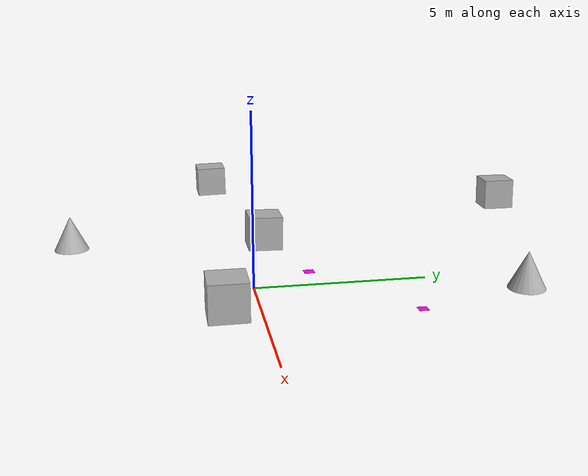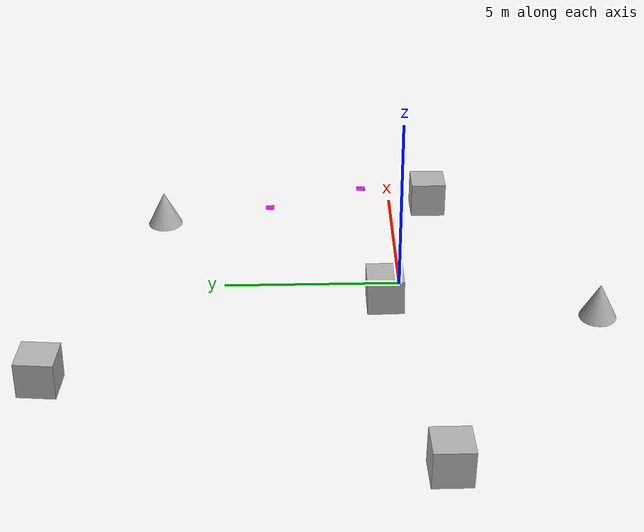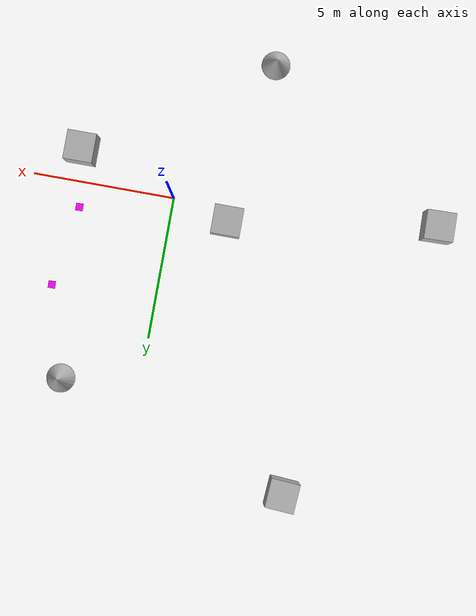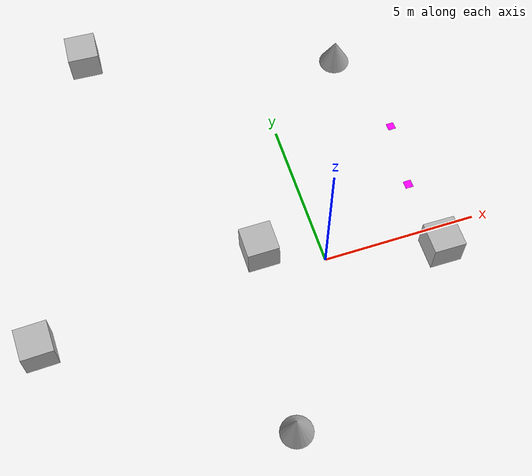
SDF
<sdf version="1.6">
 <world name="moon">
  <plugin filename="gz-sim-physics-system" name="gz::sim::systems::Physics"/>
  <plugin filename="gz-sim-user-commands-system" name="gz::sim::systems::UserCommands"/>
  <plugin filename="gz-sim-scene-broadcaster-system" name="gz::sim::systems::SceneBroadcaster"/>
  <plugin filename="gz-sim-sensors-system" name="gz::sim::systems::Sensors">
   <render_engine>ogre2</render_engine>
  </plugin>
  <plugin filename="gz-sim-imu-system" name="gz::sim::systems::Imu"/>
  <scene><grid>false</grid><ambient>1.0 1.0 1.0</ambient><background>0.8 0.8 0.8</background></scene>
  <model name="plate">
   <pose>3 1 1.5 0.01 0 0.02</pose>
   <link name="plate_link">
    <collision name="plate_collision"><geometry><box><size>0.25 0.25 0.005</size></box></geometry></collision>
    <visual name="plate_visual">
     <geometry><box><size>0.25 0.25 0.005</size></box></geometry>
     <material name="plate_material">
      <ambient>1 0 1 1</ambient>
      <diffuse>1 0 1 1</diffuse>
      <specular>0 0 0 1</specular>
     </material>
    </visual>
   </link>
   <static>false</static>
  </model>
  <model name="box">
   <pose>3.346168993316093 -1.0302683304231084 1.1274053722125039 0.001072950961256644
        0.021484223036816189 -0.00065754485846613924</pose>
   <link name="box_link">
    <inertial>
     <inertia><ixx>0.16666</ixx><ixy>0</ixy><ixz>0</ixz><iyy>0.16666</iyy><iyz>0</iyz><izz>0.16666</izz></inertia>
     <mass>1</mass>
    </inertial>
    <collision name="box_collision"><geometry><box><size>1 1 1</size></box></geometry></collision>
    <visual name="box_visual">
     <geometry><box><size>1 1 1</size></box></geometry>
     <material>
      <ambient>0.300000012 0.300000012 0.300000012 1</ambient>
      <diffuse>0.699999988 0.699999988 0.699999988 1</diffuse>
      <specular>1 1 1 1</specular>
     </material>
    </visual>
   </link>
   <static>false</static>
  </model>
  <model name="box_0">
   <pose>-2.0 0.55950999999999995 1.0879700000000001 -0.020390700000000008
        -0.0094863500000000062 5.7710500000000016e-05</pose>
   <link name="box_link">
    <inertial>
     <inertia><ixx>0.16666</ixx><ixy>0</ixy><ixz>0</ixz><iyy>0.16666</iyy><iyz>0</iyz><izz>0.16666</izz></inertia>
     <mass>1</mass>
    </inertial>
    <collision name="box_collision"><geometry><box><size>1 1 1</size></box></geometry></collision>
    <visual name="box_visual">
     <geometry><box><size>1 1 1</size></box></geometry>
     <material>
      <ambient>0.300000012 0.300000012 0.300000012 1</ambient>
      <diffuse>0.699999988 0.699999988 0.699999988 1</diffuse>
      <specular>1 1 1 1</specular>
     </material>
    </visual>
   </link>
   <static>false</static>
  </model>
  <model name="cone">
   <pose>2.7015868341221849 6.8602798685564048 1.0624091494069121 -8.4837440604655233e-05
        0.008755762983781893 3.9530638908309961e-05</pose>
   <link name="cone_link">
    <inertial>
     <inertia>
      <ixx>0.074999999999999997</ixx>
      <ixy>0</ixy>
      <ixz>0</ixz>
      <iyy>0.074999999999999997</iyy>
      <iyz>0</iyz>
      <izz>0.074999999999999997</izz>
     </inertia>
     <mass>1</mass>
    </inertial>
    <collision name="cone_collision">
     <geometry><cone><radius>0.5</radius><length>1</length></cone></geometry>
    </collision>
    <visual name="cone_visual">
     <geometry><cone><radius>0.5</radius><length>1</length></cone></geometry>
     <material>
      <ambient>0.300000012 0.300000012 0.300000012 1</ambient>
      <diffuse>0.699999988 0.699999988 0.699999988 1</diffuse>
      <specular>1 1 1 1</specular>
     </material>
    </visual>
   </link>
   <static>false</static>
  </model>
  <model name="cone_0">
   <pose>-2.7156227468079375 -5.1301806076499989 1.0623195726406607 -0.00092832183853593423
        -0.021831694484390186 -3.437292959328681e-05</pose>
   <link name="cone_link">
    <inertial>
     <inertia>
      <ixx>0.074999999999999997</ixx>
      <ixy>0</ixy>
      <ixz>0</ixz>
      <iyy>0.074999999999999997</iyy>
      <iyz>0</iyz>
      <izz>0.074999999999999997</izz>
     </inertia>
     <mass>1</mass>
    </inertial>
    <collision name="cone_collision">
     <geometry><cone><radius>0.5</radius><length>1</length></cone></geometry>
    </collision>
    <visual name="cone_visual">
     <geometry><cone><radius>0.5</radius><length>1</length></cone></geometry>
     <material>
      <ambient>0.300000012 0.300000012 0.300000012 1</ambient>
      <diffuse>0.699999988 0.699999988 0.699999988 1</diffuse>
      <specular>1 1 1 1</specular>
     </material>
    </visual>
   </link>
   <static>false</static>
  </model>
  <model name="box_1">
   <pose>-5.4649953664340121 9.3713162825788654 1.0106052254320093 0.01650757915984952
        -0.022296802449623208 -0.07197957651332243</pose>
   <link name="box_link">
    <inertial>
     <inertia><ixx>0.16666</ixx><ixy>0</ixy><ixz>0</ixz><iyy>0.16666</iyy><iyz>0</iyz><izz>0.16666</izz></inertia>
     <mass>1</mass>
    </inertial>
    <collision name="box_collision"><geometry><box><size>1 1 1</size></box></geometry></collision>
    <visual name="box_visual">
     <geometry><box><size>1 1 1</size></box></geometry>
     <material>
      <ambient>0.300000012 0.300000012 0.300000012 1</ambient>
      <diffuse>0.699999988 0.699999988 0.699999988 1</diffuse>
      <specular>1 1 1 1</specular>
     </material>
    </visual>
   </link>
   <static>false</static>
  </model>
  <model name="box_2">
   <pose>-9.1320165956791968 -0.53133559932049035 1.0332506550970557 0.015358581274356218
        -0.003149113114844007 0.024015180821424231</pose>
   <link name="box_link">
    <inertial>
     <inertia><ixx>0.16666</ixx><ixy>0</ixy><ixz>0</ixz><iyy>0.16666</iyy><iyz>0</iyz><izz>0.16666</izz></inertia>
     <mass>1</mass>
    </inertial>
    <collision name="box_collision"><geometry><box><size>1 1 1</size></box></geometry></collision>
    <visual name="box_visual">
     <geometry><box><size>1 1 1</size></box></geometry>
     <material>
      <ambient>0.300000012 0.300000012 0.300000012 1</ambient>
      <diffuse>0.699999988 0.699999988 0.699999988 1</diffuse>
      <specular>1 1 1 1</specular>
     </material>
    </visual>
   </link>
   <static>false</static>
  </model>
  <model name="plate_1">
   <pose>3.5884716885426995 3.7427109230169839 0.56601148226028364 -0.013498599462879464
        0.0046661345552524314 0.025563608175122231</pose>
   <link name="plate_link">
    <collision name="plate_collision">
     <geometry><box><size>0.25 0.25 0.0050000000000000001</size></box></geometry>
    </collision>
    <visual name="plate_visual">
     <geometry><box><size>0.25 0.25 0.0050000000000000001</size></box></geometry>
     <material><ambient>1 0 1 1</ambient><diffuse>1 0 1 1</diffuse><specular>0 0 0 1</specular></material>
    </visual>
   </link>
   <static>false</static>
  </model>
  <light type="directional" name="sun">
   <pose>0 0 10 0 0.75 0</pose>
   <diffuse>0.8 0.8 0.8 1</diffuse>
   <specular>0.0 0.0 0.0 1</specular>
   <intensity>5</intensity>
   <attenuation>
    <range>100</range>
    <constant>0.9</constant>
    <linear>0.01</linear>
    <quadratic>0.001</quadratic>
   </attenuation>
   <direction>-0.5 0.1 -0.9</direction>
  </light>
  <physics type="ode">
   <real_time_update_rate>1000.0</real_time_update_rate>
   <max_step_size>0.001</max_step_size>
   <real_time_factor>1</real_time_factor>
   <ode>
    <solver>
     <type>quick</type>
     <iters>150</iters>
     <precon_iters>0</precon_iters>
     <sor>1.400000</sor>
     <use_dynamic_moi_rescaling>1</use_dynamic_moi_rescaling>
    </solver>
    <constraints>
     <cfm>0.00001</cfm>
     <erp>0.2</erp>
     <contact_max_correcting_vel>2000.000000</contact_max_correcting_vel>
     <contact_surface_layer>0.01000</contact_surface_layer>
    </constraints>
   </ode>
  </physics>
 </world>
</sdf>
